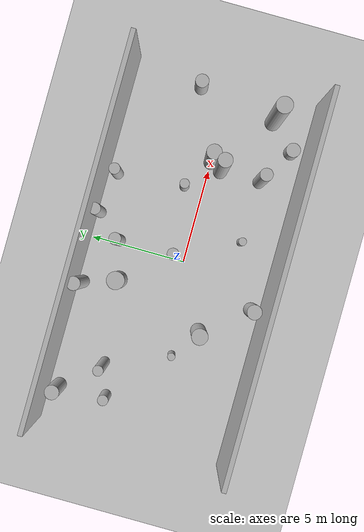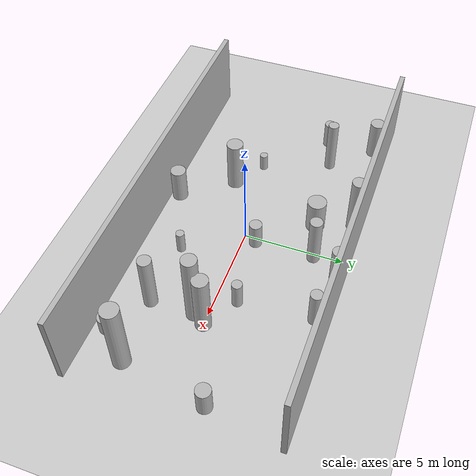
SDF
<?xml version="1.0"?>
<sdf version="1.4">
  <world name="default">
    <gui>
      <camera name="user_camera">
        <pose>-20 -30 40 0 0.66 0.83</pose>
      </camera>
    </gui>
    <include>
      <uri>model://ground_plane</uri>
    </include>
    <include>
      <uri>model://sun</uri>
    </include>
    <scene>
      <shadows>0</shadows>
    </scene>
    <model name="forest">
      <static>true</static>
      <link name="cylinder0">
        <pose>5.188115316324986 -2.7528548509564565 1.525632067435399 0 0 0 </pose>
        <visual name="visual">
          <geometry>
            <cylinder>
              <radius>0.33082368139969864</radius>
              <length>3.051264134870798</length>
            </cylinder>
          </geometry>
        </visual>
        <collision name="collision">
          <geometry>
            <cylinder>
              <radius>0.33082368139969864</radius>
              <length>3.051264134870798</length>
            </cylinder>
          </geometry>
          <max_contacts>0</max_contacts>
        </collision>
      </link>
      <link name="cylinder1">
        <pose>7.157812479780521 -3.966678169445206 0.44976675381773834 0 0 0 </pose>
        <visual name="visual">
          <geometry>
            <cylinder>
              <radius>0.3807407138274272</radius>
              <length>0.8995335076354767</length>
            </cylinder>
          </geometry>
        </visual>
        <collision name="collision">
          <geometry>
            <cylinder>
              <radius>0.3807407138274272</radius>
              <length>0.8995335076354767</length>
            </cylinder>
          </geometry>
          <max_contacts>0</max_contacts>
        </collision>
      </link>
      <link name="cylinder2">
        <pose>3.6099034321615733 4.626767885616541 0.9792807981201621 0 0 0 </pose>
        <visual name="visual">
          <geometry>
            <cylinder>
              <radius>0.2948094120965354</radius>
              <length>1.9585615962403242</length>
            </cylinder>
          </geometry>
        </visual>
        <collision name="collision">
          <geometry>
            <cylinder>
              <radius>0.2948094120965354</radius>
              <length>1.9585615962403242</length>
            </cylinder>
          </geometry>
          <max_contacts>0</max_contacts>
        </collision>
      </link>
      <link name="cylinder3">
        <pose>1.8324610687971834 -2.6744267004732523 0.5864097041871181 0 0 0 </pose>
        <visual name="visual">
          <geometry>
            <cylinder>
              <radius>0.21175065485777395</radius>
              <length>1.1728194083742363</length>
            </cylinder>
          </geometry>
        </visual>
        <collision name="collision">
          <geometry>
            <cylinder>
              <radius>0.21175065485777395</radius>
              <length>1.1728194083742363</length>
            </cylinder>
          </geometry>
          <max_contacts>0</max_contacts>
        </collision>
      </link>
      <link name="cylinder4">
        <pose>9.224813765903264 1.5698399315539682 0.7063530204215867 0 0 0 </pose>
        <visual name="visual">
          <geometry>
            <cylinder>
              <radius>0.35611411965997397</radius>
              <length>1.4127060408431733</length>
            </cylinder>
          </geometry>
        </visual>
        <collision name="collision">
          <geometry>
            <cylinder>
              <radius>0.35611411965997397</radius>
              <length>1.4127060408431733</length>
            </cylinder>
          </geometry>
          <max_contacts>0</max_contacts>
        </collision>
      </link>
      <link name="cylinder5">
        <pose>1.3766886993940695 4.9720517271041125 1.2271950840612051 0 0 0 </pose>
        <visual name="visual">
          <geometry>
            <cylinder>
              <radius>0.30672951982977625</radius>
              <length>2.4543901681224103</length>
            </cylinder>
          </geometry>
        </visual>
        <collision name="collision">
          <geometry>
            <cylinder>
              <radius>0.30672951982977625</radius>
              <length>2.4543901681224103</length>
            </cylinder>
          </geometry>
          <max_contacts>0</max_contacts>
        </collision>
      </link>
      <link name="cylinder6">
        <pose>3.9004151653081216 1.024170069457507 0.7067332387717388 0 0 0 </pose>
        <visual name="visual">
          <geometry>
            <cylinder>
              <radius>0.25375521345360136</radius>
              <length>1.4134664775434775</length>
            </cylinder>
          </geometry>
        </visual>
        <collision name="collision">
          <geometry>
            <cylinder>
              <radius>0.25375521345360136</radius>
              <length>1.4134664775434775</length>
            </cylinder>
          </geometry>
          <max_contacts>0</max_contacts>
        </collision>
      </link>
      <link name="cylinder7">
        <pose>8.45458242539836 -2.611187074419453 1.9460173210555896 0 0 0 </pose>
        <visual name="visual">
          <geometry>
            <cylinder>
              <radius>0.4220710328872269</radius>
              <length>3.892034642111179</length>
            </cylinder>
          </geometry>
        </visual>
        <collision name="collision">
          <geometry>
            <cylinder>
              <radius>0.4220710328872269</radius>
              <length>3.892034642111179</length>
            </cylinder>
          </geometry>
          <max_contacts>0</max_contacts>
        </collision>
      </link>
      <link name="cylinder8">
        <pose>-2.441961704790172 4.88463610441875 1.5770653303119724 0 0 0 </pose>
        <visual name="visual">
          <geometry>
            <cylinder>
              <radius>0.3470242446862746</radius>
              <length>3.1541306606239448</length>
            </cylinder>
          </geometry>
        </visual>
        <collision name="collision">
          <geometry>
            <cylinder>
              <radius>0.3470242446862746</radius>
              <length>3.1541306606239448</length>
            </cylinder>
          </geometry>
          <max_contacts>0</max_contacts>
        </collision>
      </link>
      <link name="cylinder9">
        <pose>-8.100306881354411 4.617354515161507 1.0529927759604516 0 0 0 </pose>
        <visual name="visual">
          <geometry>
            <cylinder>
              <radius>0.3759578881172426</radius>
              <length>2.105985551920903</length>
            </cylinder>
          </geometry>
        </visual>
        <collision name="collision">
          <geometry>
            <cylinder>
              <radius>0.3759578881172426</radius>
              <length>2.105985551920903</length>
            </cylinder>
          </geometry>
          <max_contacts>0</max_contacts>
        </collision>
      </link>
      <link name="cylinder10">
        <pose>0.20397036418211378 3.5759131470527503 1.3246530496538282 0 0 0 </pose>
        <visual name="visual">
          <geometry>
            <cylinder>
              <radius>0.31078143834061134</radius>
              <length>2.6493060993076565</length>
            </cylinder>
          </geometry>
        </visual>
        <collision name="collision">
          <geometry>
            <cylinder>
              <radius>0.31078143834061134</radius>
              <length>2.6493060993076565</length>
            </cylinder>
          </geometry>
          <max_contacts>0</max_contacts>
        </collision>
      </link>
      <link name="cylinder11">
        <pose>0.2508942056004937 0.6269007898184764 0.6918535488988361 0 0 0 </pose>
        <visual name="visual">
          <geometry>
            <cylinder>
              <radius>0.3147594605668052</radius>
              <length>1.3837070977976722</length>
            </cylinder>
          </geometry>
        </visual>
        <collision name="collision">
          <geometry>
            <cylinder>
              <radius>0.3147594605668052</radius>
              <length>1.3837070977976722</length>
            </cylinder>
          </geometry>
          <max_contacts>0</max_contacts>
        </collision>
      </link>
      <link name="cylinder12">
        <pose>-6.265774180325296 2.607797244173101 1.449975005873645 0 0 0 </pose>
        <visual name="visual">
          <geometry>
            <cylinder>
              <radius>0.26708795170647137</radius>
              <length>2.89995001174729</length>
            </cylinder>
          </geometry>
        </visual>
        <collision name="collision">
          <geometry>
            <cylinder>
              <radius>0.26708795170647137</radius>
              <length>2.89995001174729</length>
            </cylinder>
          </geometry>
          <max_contacts>0</max_contacts>
        </collision>
      </link>
      <link name="cylinder13">
        <pose>-4.935346359868684 -0.7271238653578695 0.45404283588332567 0 0 0 </pose>
        <visual name="visual">
          <geometry>
            <cylinder>
              <radius>0.2043565123017629</radius>
              <length>0.9080856717666513</length>
            </cylinder>
          </geometry>
        </visual>
        <collision name="collision">
          <geometry>
            <cylinder>
              <radius>0.2043565123017629</radius>
              <length>0.9080856717666513</length>
            </cylinder>
          </geometry>
          <max_contacts>0</max_contacts>
        </collision>
      </link>
      <link name="cylinder14">
        <pose>5.169513741746318 -0.6038281561437051 1.9978323769424857 0 0 0 </pose>
        <visual name="visual">
          <geometry>
            <cylinder>
              <radius>0.3692126431965028</radius>
              <length>3.9956647538849714</length>
            </cylinder>
          </geometry>
        </visual>
        <collision name="collision">
          <geometry>
            <cylinder>
              <radius>0.3692126431965028</radius>
              <length>3.9956647538849714</length>
            </cylinder>
          </geometry>
          <max_contacts>0</max_contacts>
        </collision>
      </link>
      <link name="cylinder15">
        <pose>5.5284883751516105 -0.0008715861018817606 1.6555938052439985 0 0 0 </pose>
        <visual name="visual">
          <geometry>
            <cylinder>
              <radius>0.38647660595616595</radius>
              <length>3.311187610487997</length>
            </cylinder>
          </geometry>
        </visual>
        <collision name="collision">
          <geometry>
            <cylinder>
              <radius>0.38647660595616595</radius>
              <length>3.311187610487997</length>
            </cylinder>
          </geometry>
          <max_contacts>0</max_contacts>
        </collision>
      </link>
      <link name="cylinder16">
        <pose>-3.3394035441590697 -1.7614203845306342 1.3799856568266962 0 0 0 </pose>
        <visual name="visual">
          <geometry>
            <cylinder>
              <radius>0.4179900610393035</radius>
              <length>2.7599713136533923</length>
            </cylinder>
          </geometry>
        </visual>
        <collision name="collision">
          <geometry>
            <cylinder>
              <radius>0.4179900610393035</radius>
              <length>2.7599713136533923</length>
            </cylinder>
          </geometry>
          <max_contacts>0</max_contacts>
        </collision>
      </link>
      <link name="cylinder17">
        <pose>-7.960007060833383 2.075356716968172 0.7199335905953512 0 0 0 </pose>
        <visual name="visual">
          <geometry>
            <cylinder>
              <radius>0.27968382447166473</radius>
              <length>1.4398671811907024</length>
            </cylinder>
          </geometry>
        </visual>
        <collision name="collision">
          <geometry>
            <cylinder>
              <radius>0.27968382447166473</radius>
              <length>1.4398671811907024</length>
            </cylinder>
          </geometry>
          <max_contacts>0</max_contacts>
        </collision>
      </link>
      <link name="cylinder18">
        <pose>-1.839051689935907 3.075075250658042 0.8737045946609421 0 0 0 </pose>
        <visual name="visual">
          <geometry>
            <cylinder>
              <radius>0.471432999445554</radius>
              <length>1.7474091893218842</length>
            </cylinder>
          </geometry>
        </visual>
        <collision name="collision">
          <geometry>
            <cylinder>
              <radius>0.471432999445554</radius>
              <length>1.7474091893218842</length>
            </cylinder>
          </geometry>
          <max_contacts>0</max_contacts>
        </collision>
      </link>
      <link name="cylinder19">
        <pose>-1.495241643357021 -4.167698472389397 0.9024370999687357 0 0 0 </pose>
        <visual name="visual">
          <geometry>
            <cylinder>
              <radius>0.3915730689698329</radius>
              <length>1.8048741999374713</length>
            </cylinder>
          </geometry>
        </visual>
        <collision name="collision">
          <geometry>
            <cylinder>
              <radius>0.3915730689698329</radius>
              <length>1.8048741999374713</length>
            </cylinder>
          </geometry>
          <max_contacts>0</max_contacts>
        </collision>
      </link>
      <link name="cube0">
        <pose>0 5.25 2.0 0 0 0 </pose>
        <visual name="visual">
          <geometry>
            <box>
              <size>20 0.25 4.0</size>
            </box>
          </geometry>
        </visual>
        <collision name="collision">
          <geometry>
            <box>
              <size>20 0.25 4.0</size>
            </box>
          </geometry>
          <max_contacts>0</max_contacts>
        </collision>
      </link>
      <link name="cube1">
        <pose>0 -4.75 2.0 0 0 0 </pose>
        <visual name="visual">
          <geometry>
            <box>
              <size>20 0.25 4.0</size>
            </box>
          </geometry>
        </visual>
        <collision name="collision">
          <geometry>
            <box>
              <size>20 0.25 4.0</size>
            </box>
          </geometry>
          <max_contacts>0</max_contacts>
        </collision>
      </link>
    </model>
    <!-- Plugins -->
    <plugin name="gazebo_octomap" filename="librotors_gazebo_octomap_plugin.so"/>
    <plugin name="ros_interface_plugin" filename="librotors_gazebo_ros_interface_plugin.so"/>
    <!-- Physics -->
    <physics name="default_physics" default="0" type="ode">
      <max_step_size>0.004</max_step_size>
      <real_time_factor>1</real_time_factor>
      <real_time_update_rate>250</real_time_update_rate>
      <gravity>0 0 -9.8</gravity>
      <magnetic_field>6e-06 2.3e-05 -4.2e-05</magnetic_field>
      <ode>
        <solver>
          <type>quick</type>
          <iters>1000</iters>
          <sor>1.3</sor>
          <use_dynamic_moi_rescaling>0</use_dynamic_moi_rescaling>
        </solver>
        <constraints>
          <cfm>0</cfm>
          <erp>0.2</erp>
          <contact_max_correcting_vel>100</contact_max_correcting_vel>
          <contact_surface_layer>0.001</contact_surface_layer>
        </constraints>
      </ode>
    </physics>
  </world>
</sdf>
